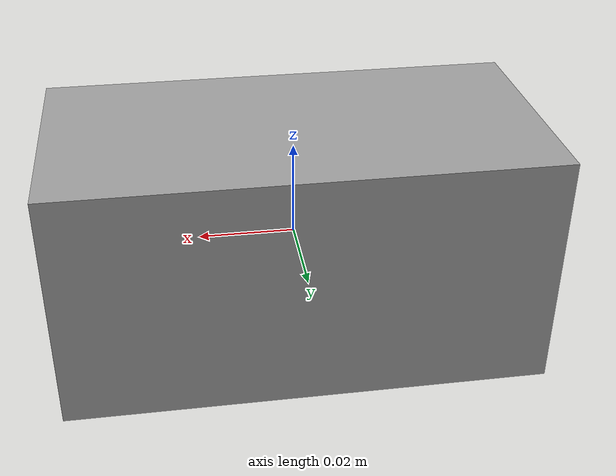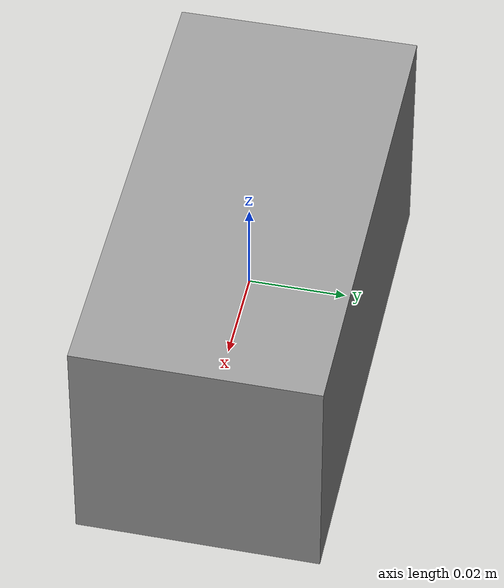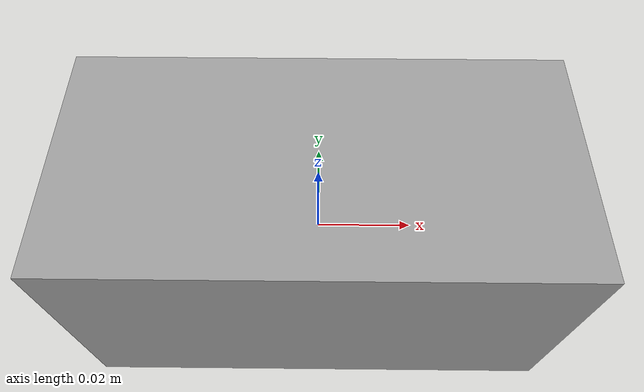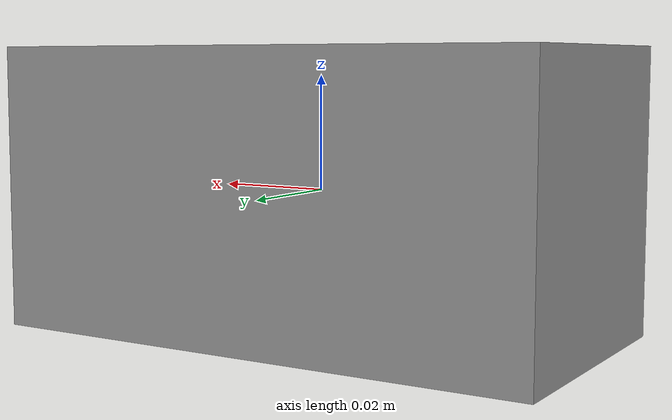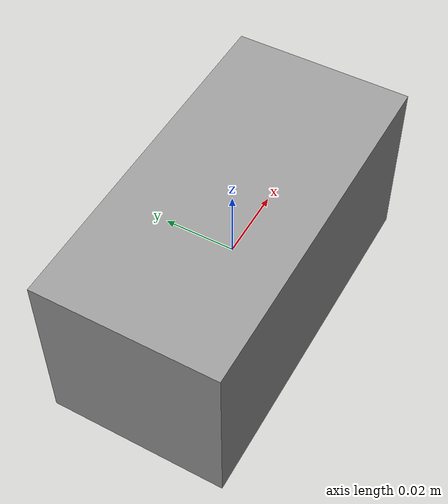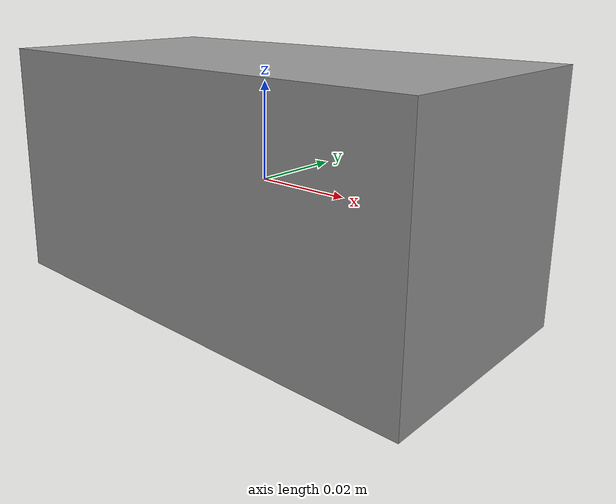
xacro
<?xml version="1.0"?>
<robot xmlns:xacro="http://www.ros.org/wiki/xacro" name="depth_camera">
  <xacro:arg name="cam_topic" default="depth_camera"/>

  <xacro:arg name="enable_visual" default="1"/>
  <xacro:arg name="enable_collision" default="0"/>
  <xacro:arg name="is_static" default="1"/>
  <xacro:arg name="update_rate" default="30.0"/>
  <xacro:arg name="width" default="640"/>
  <xacro:arg name="height" default="480"/>
  <xacro:arg name="fov" default="1.047198"/>
  <xacro:arg name="format" default="R8G8B8"/>

  <!-- Camera Link -->
  <link name="base">
    <xacro:if value="$(arg enable_visual)">
      <visual>
	      <origin xyz="0 0 0" rpy="0 0 0"/>
	      <geometry>
	        <box size="0.1 0.05 0.05"/>
	      </geometry>
	      <material name="gray"/>
      </visual>
    </xacro:if>
    <xacro:if value="$(arg enable_collision)">
      <collision>
	      <geometry>
	        <box size="0.05 0.05 0.1"/>
  	    </geometry>
      </collision>
    </xacro:if>
    <inertial>
	    <mass value="0.2" />
	    <inertia ixx="0.00020833" ixy="0.0" ixz="0.0"
		      iyy="0.00020833" iyz="0.0"
		      izz="0.0000833" />
    </inertial>
  </link>

  <xacro:if value="$(arg is_static)">
    <gazebo>
      <static>true</static>
    </gazebo>
  </xacro:if>

  <gazebo reference="base">
    <!-- Gazebo Camera Plugin -->
    <sensor type="depth" name="camera_sensor">
      <update_rate>$(arg update_rate)</update_rate>
      <camera>
        <horizontal_fov>$(arg fov)</horizontal_fov>
        <image>
          <format>$(arg format)</format>
          <width>$(arg width)</width>
          <height>$(arg height)</height>
        </image>
        <clip>
          <near>0.05</near>
          <far>100</far>
        </clip>
      </camera>

      <plugin name="camera_plugin" filename="libgazebo_ros_openni_kinect.so">
        <baseline>0.2</baseline>
        <cameraName>$(arg cam_topic)</cameraName>
        <alwaysOn>true</alwaysOn>
        <updateRate>$(arg update_rate)</updateRate>
        <imageTopicName>image</imageTopicName>
        <cameraInfoTopicName>camera_info</cameraInfoTopicName>
        <frameName>map</frameName>
        <pointCloudCutoff>0.5</pointCloudCutoff>
        <pointCloudCutoffMax>3.0</pointCloudCutoffMax>
        <distortionK1>0</distortionK1>
        <distortionK2>0</distortionK2>
        <distortionK3>0</distortionK3>
        <distortionT1>0</distortionT1>
        <distortionT2>0</distortionT2>
        <CxPrime>0</CxPrime>
        <Cx>0</Cx>
        <Cy>0</Cy>
        <focalLength>0</focalLength>
        <hackBaseline>0</hackBaseline>
      </plugin>
    </sensor>
  </gazebo>
</robot>
